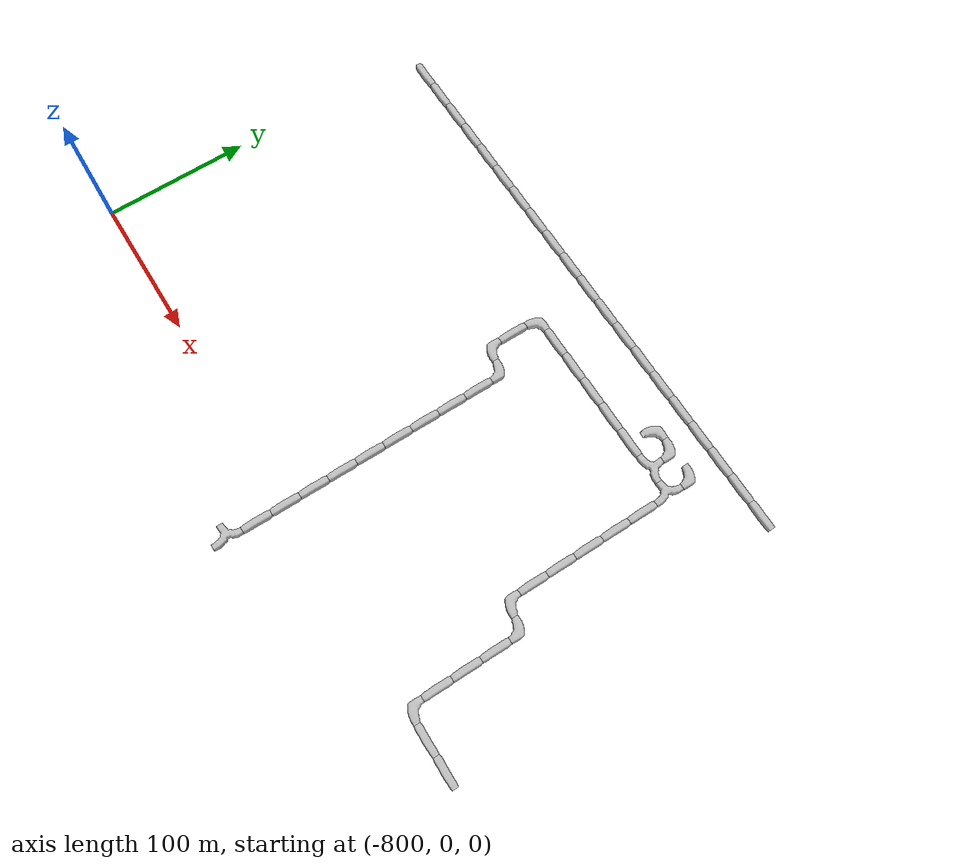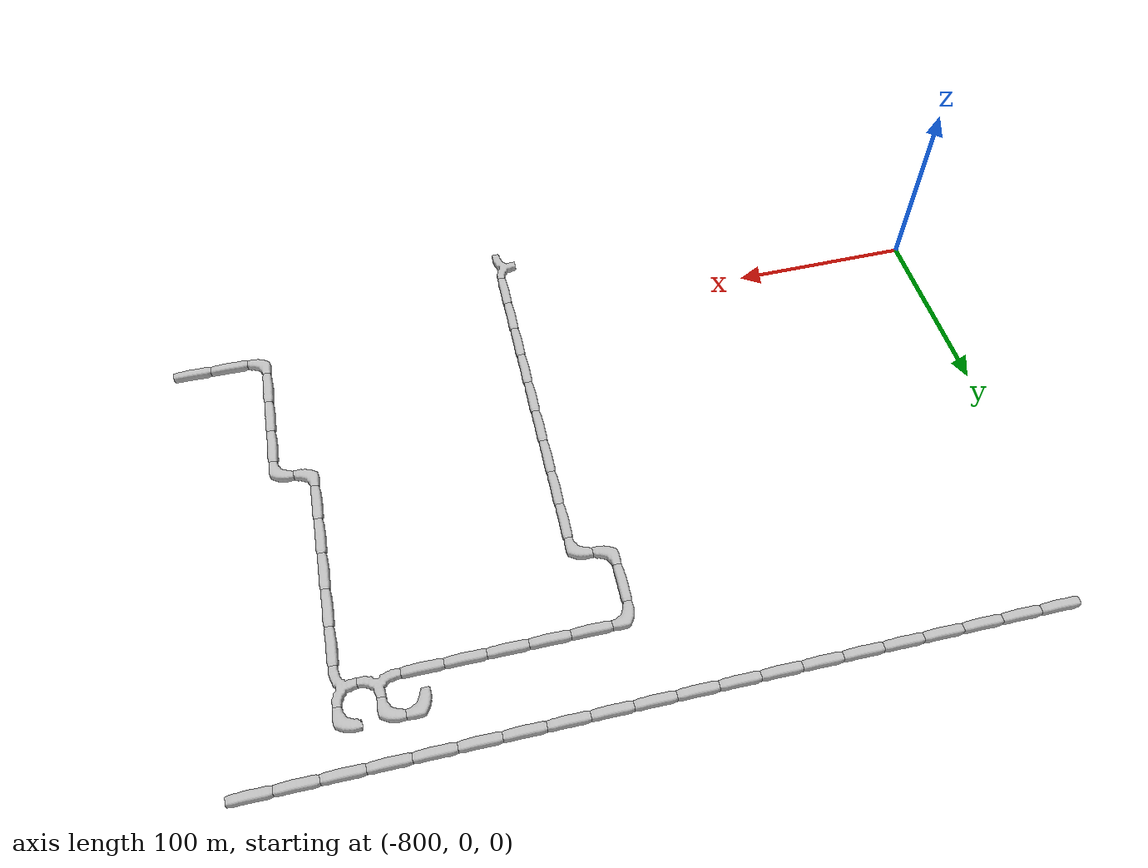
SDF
<sdf version="1.6">
 <world name="cave_32000_2">
  <include>
   <static>true</static>
   <name>cave_-19_0</name>
   <pose>-380 0 0 0 0 1.5707963267948966</pose>
   <uri>model://cave_straight_20m</uri>
  </include>
  <include>
   <static>true</static>
   <name>cave_-20_0</name>
   <pose>-400 0 0 0 0 1.5707963267948966</pose>
   <uri>model://cave_straight_20m</uri>
  </include>
  <include>
   <static>true</static>
   <name>cave_-21_0</name>
   <pose>-420 0 0 0 0 0.0</pose>
   <uri>model://cave_L_20m</uri>
  </include>
  <include>
   <static>true</static>
   <name>cave_-21_1</name>
   <pose>-420 20 0 0 0 0.0</pose>
   <uri>model://cave_straight_20m</uri>
  </include>
  <include>
   <static>true</static>
   <name>cave_-21_2</name>
   <pose>-420 40 0 0 0 0.0</pose>
   <uri>model://cave_straight_20m</uri>
  </include>
  <include>
   <static>true</static>
   <name>cave_-21_3</name>
   <pose>-420 60 0 0 0 0.0</pose>
   <uri>model://cave_straight_20m</uri>
  </include>
  <include>
   <static>true</static>
   <name>cave_-21_4</name>
   <pose>-420 80 0 0 0 3.141592653589793</pose>
   <uri>model://cave_L_20m</uri>
  </include>
  <include>
   <static>true</static>
   <name>cave_-22_4</name>
   <pose>-440 80 0 0 0 0.0</pose>
   <uri>model://cave_L_20m</uri>
  </include>
  <include>
   <static>true</static>
   <name>cave_-22_5</name>
   <pose>-440 100 0 0 0 0.0</pose>
   <uri>model://cave_straight_20m</uri>
  </include>
  <include>
   <static>true</static>
   <name>cave_-22_6</name>
   <pose>-440 120 0 0 0 0.0</pose>
   <uri>model://cave_straight_20m</uri>
  </include>
  <include>
   <static>true</static>
   <name>cave_-22_7</name>
   <pose>-440 140 0 0 0 0.0</pose>
   <uri>model://cave_straight_20m</uri>
  </include>
  <include>
   <static>true</static>
   <name>cave_-22_8</name>
   <pose>-440 160 0 0 0 0.0</pose>
   <uri>model://cave_straight_20m</uri>
  </include>
  <include>
   <static>true</static>
   <name>cave_-22_9</name>
   <pose>-440 180 0 0 0 0.0</pose>
   <uri>model://cave_straight_20m</uri>
  </include>
  <include>
   <static>true</static>
   <name>cave_-22_10</name>
   <pose>-440 200 0 0 0 1.5707963267948966</pose>
   <uri>model://cave_3way_20m</uri>
  </include>
  <include>
   <static>true</static>
   <name>cave_-23_10</name>
   <pose>-460 200 0 0 0 0.0</pose>
   <uri>model://cave_3way_20m</uri>
  </include>
  <include>
   <static>true</static>
   <name>cave_-24_10</name>
   <pose>-480 200 0 0 0 1.5707963267948966</pose>
   <uri>model://cave_straight_20m</uri>
  </include>
  <include>
   <static>true</static>
   <name>cave_-25_10</name>
   <pose>-500 200 0 0 0 1.5707963267948966</pose>
   <uri>model://cave_straight_20m</uri>
  </include>
  <include>
   <static>true</static>
   <name>cave_-26_10</name>
   <pose>-520 200 0 0 0 1.5707963267948966</pose>
   <uri>model://cave_straight_20m</uri>
  </include>
  <include>
   <static>true</static>
   <name>cave_-27_10</name>
   <pose>-540 200 0 0 0 1.5707963267948966</pose>
   <uri>model://cave_straight_20m</uri>
  </include>
  <include>
   <static>true</static>
   <name>cave_-28_10</name>
   <pose>-560 200 0 0 0 1.5707963267948966</pose>
   <uri>model://cave_straight_20m</uri>
  </include>
  <include>
   <static>true</static>
   <name>cave_-29_10</name>
   <pose>-580 200 0 0 0 -1.5707963267948966</pose>
   <uri>model://cave_L_20m</uri>
  </include>
  <include>
   <static>true</static>
   <name>cave_-29_9</name>
   <pose>-580 180 0 0 0 0.0</pose>
   <uri>model://cave_straight_20m</uri>
  </include>
  <include>
   <static>true</static>
   <name>cave_-29_8</name>
   <pose>-580 160 0 0 0 0.0</pose>
   <uri>model://cave_L_20m</uri>
  </include>
  <include>
   <static>true</static>
   <name>cave_-28_8</name>
   <pose>-560 160 0 0 0 3.141592653589793</pose>
   <uri>model://cave_L_20m</uri>
  </include>
  <include>
   <static>true</static>
   <name>cave_-28_7</name>
   <pose>-560 140 0 0 0 0.0</pose>
   <uri>model://cave_straight_20m</uri>
  </include>
  <include>
   <static>true</static>
   <name>cave_-28_6</name>
   <pose>-560 120 0 0 0 0.0</pose>
   <uri>model://cave_straight_20m</uri>
  </include>
  <include>
   <static>true</static>
   <name>cave_-28_5</name>
   <pose>-560 100 0 0 0 0.0</pose>
   <uri>model://cave_straight_20m</uri>
  </include>
  <include>
   <static>true</static>
   <name>cave_-28_4</name>
   <pose>-560 80 0 0 0 0.0</pose>
   <uri>model://cave_straight_20m</uri>
  </include>
  <include>
   <static>true</static>
   <name>cave_-28_3</name>
   <pose>-560 60 0 0 0 0.0</pose>
   <uri>model://cave_straight_20m</uri>
  </include>
  <include>
   <static>true</static>
   <name>cave_-28_2</name>
   <pose>-560 40 0 0 0 0.0</pose>
   <uri>model://cave_straight_20m</uri>
  </include>
  <include>
   <static>true</static>
   <name>cave_-28_1</name>
   <pose>-560 20 0 0 0 0.0</pose>
   <uri>model://cave_straight_20m</uri>
  </include>
  <include>
   <static>true</static>
   <name>cave_-28_0</name>
   <pose>-560 0 0 0 0 0.0</pose>
   <uri>model://cave_straight_20m</uri>
  </include>
  <include>
   <static>true</static>
   <name>cave_-28_-1</name>
   <pose>-560 -20 0 0 0 0.0</pose>
   <uri>model://cave_straight_20m</uri>
  </include>
  <include>
   <static>true</static>
   <name>cave_-28_-2</name>
   <pose>-560 -40 0 0 0 1.5707963267948966</pose>
   <uri>model://cave_3way_20m</uri>
  </include>
  <include>
   <static>true</static>
   <name>cave_-39_12</name>
   <pose>-780 240 0 0 0 1.5707963267948966</pose>
   <uri>model://cave_straight_20m</uri>
  </include>
  <include>
   <static>true</static>
   <name>cave_-38_12</name>
   <pose>-760 240 0 0 0 1.5707963267948966</pose>
   <uri>model://cave_straight_20m</uri>
  </include>
  <include>
   <static>true</static>
   <name>cave_-37_12</name>
   <pose>-740 240 0 0 0 1.5707963267948966</pose>
   <uri>model://cave_straight_20m</uri>
  </include>
  <include>
   <static>true</static>
   <name>cave_-36_12</name>
   <pose>-720 240 0 0 0 1.5707963267948966</pose>
   <uri>model://cave_straight_20m</uri>
  </include>
  <include>
   <static>true</static>
   <name>cave_-35_12</name>
   <pose>-700 240 0 0 0 1.5707963267948966</pose>
   <uri>model://cave_straight_20m</uri>
  </include>
  <include>
   <static>true</static>
   <name>cave_-34_12</name>
   <pose>-680 240 0 0 0 1.5707963267948966</pose>
   <uri>model://cave_straight_20m</uri>
  </include>
  <include>
   <static>true</static>
   <name>cave_-33_12</name>
   <pose>-660 240 0 0 0 1.5707963267948966</pose>
   <uri>model://cave_straight_20m</uri>
  </include>
  <include>
   <static>true</static>
   <name>cave_-32_12</name>
   <pose>-640 240 0 0 0 1.5707963267948966</pose>
   <uri>model://cave_straight_20m</uri>
  </include>
  <include>
   <static>true</static>
   <name>cave_-31_12</name>
   <pose>-620 240 0 0 0 1.5707963267948966</pose>
   <uri>model://cave_straight_20m</uri>
  </include>
  <include>
   <static>true</static>
   <name>cave_-30_12</name>
   <pose>-600 240 0 0 0 1.5707963267948966</pose>
   <uri>model://cave_straight_20m</uri>
  </include>
  <include>
   <static>true</static>
   <name>cave_-29_12</name>
   <pose>-580 240 0 0 0 1.5707963267948966</pose>
   <uri>model://cave_straight_20m</uri>
  </include>
  <include>
   <static>true</static>
   <name>cave_-28_12</name>
   <pose>-560 240 0 0 0 1.5707963267948966</pose>
   <uri>model://cave_straight_20m</uri>
  </include>
  <include>
   <static>true</static>
   <name>cave_-27_12</name>
   <pose>-540 240 0 0 0 1.5707963267948966</pose>
   <uri>model://cave_straight_20m</uri>
  </include>
  <include>
   <static>true</static>
   <name>cave_-26_12</name>
   <pose>-520 240 0 0 0 1.5707963267948966</pose>
   <uri>model://cave_straight_20m</uri>
  </include>
  <include>
   <static>true</static>
   <name>cave_-25_12</name>
   <pose>-500 240 0 0 0 1.5707963267948966</pose>
   <uri>model://cave_straight_20m</uri>
  </include>
  <include>
   <static>true</static>
   <name>cave_-24_12</name>
   <pose>-480 240 0 0 0 1.5707963267948966</pose>
   <uri>model://cave_straight_20m</uri>
  </include>
  <include>
   <static>true</static>
   <name>cave_-23_12</name>
   <pose>-460 240 0 0 0 1.5707963267948966</pose>
   <uri>model://cave_straight_20m</uri>
  </include>
  <include>
   <static>true</static>
   <name>cave_-22_12</name>
   <pose>-440 240 0 0 0 1.5707963267948966</pose>
   <uri>model://cave_straight_20m</uri>
  </include>
  <include>
   <static>true</static>
   <name>cave_-21_12</name>
   <pose>-420 240 0 0 0 1.5707963267948966</pose>
   <uri>model://cave_straight_20m</uri>
  </include>
  <include>
   <static>true</static>
   <name>cave_-20_12</name>
   <pose>-400 240 0 0 0 1.5707963267948966</pose>
   <uri>model://cave_straight_20m</uri>
  </include>
  <include>
   <static>true</static>
   <name>cave_-23_11</name>
   <pose>-460 220 0 0 0 3.141592653589793</pose>
   <uri>model://cave_L_20m</uri>
  </include>
  <include>
   <static>true</static>
   <name>cave_-24_11</name>
   <pose>-480 220 0 0 0 -1.5707963267948966</pose>
   <uri>model://cave_L_20m</uri>
  </include>
  <include>
   <static>true</static>
   <name>cave_-22_11</name>
   <pose>-440 220 0 0 0 3.141592653589793</pose>
   <uri>model://cave_L_20m</uri>
  </include>
 </world>
</sdf>
